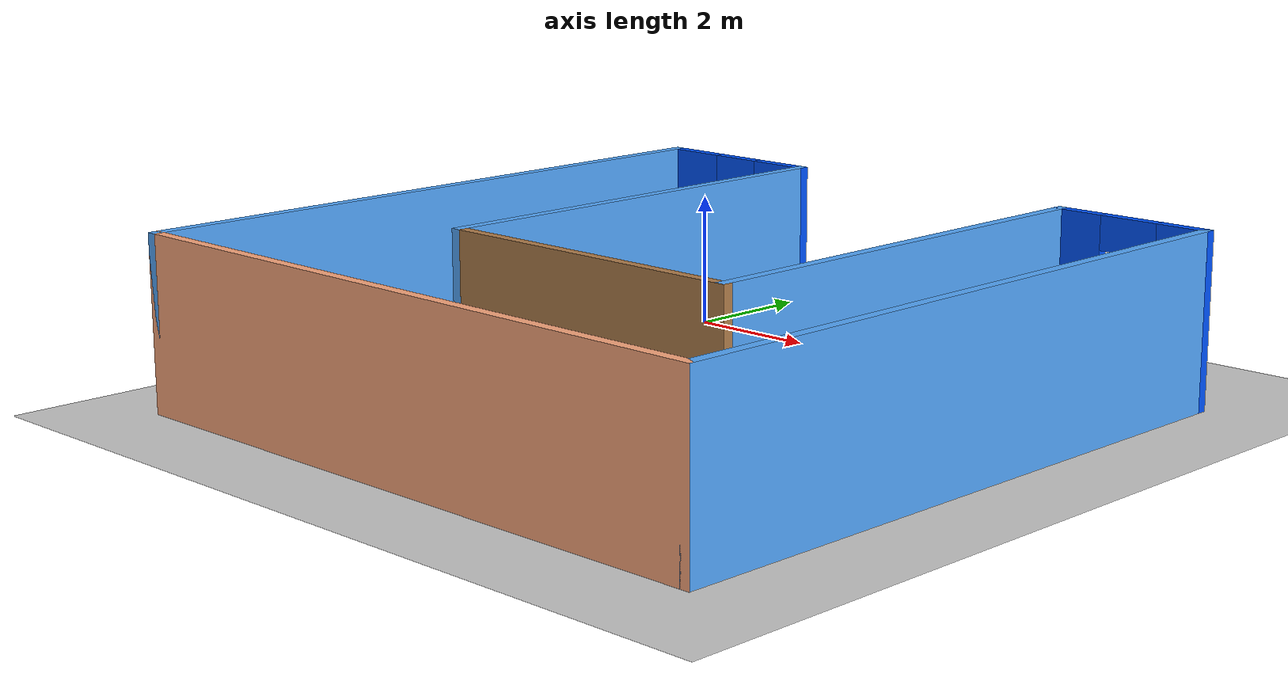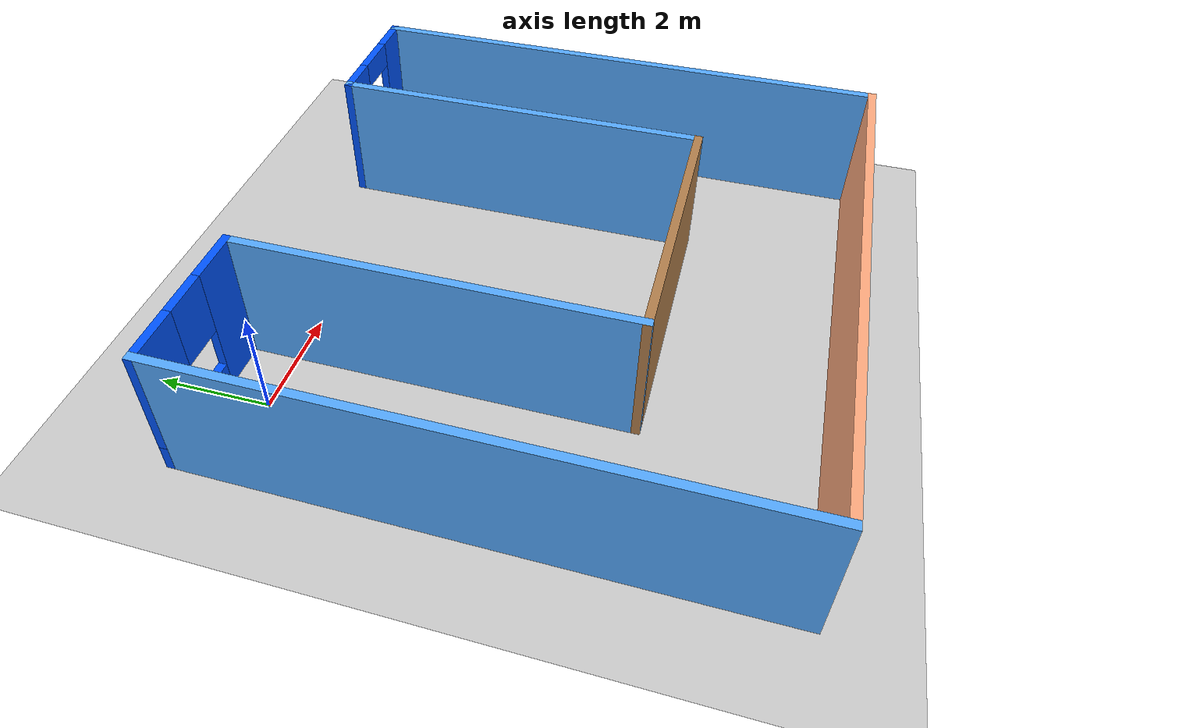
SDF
<sdf version="1.6">
 <world name="default">
  <light name="sun" type="directional">
   <pose>0 0 10 0 -0 0</pose>
   <diffuse>0.8 0.8 0.8 1</diffuse>
   <specular>0.1 0.1 0.1 1</specular>
   <attenuation>
    <range>1000</range>
    <constant>0.9</constant>
    <linear>0.01</linear>
    <quadratic>0.001</quadratic>
   </attenuation>
   <direction>-0.5 0.5 -1</direction>
  </light>
  <model name="ground_plane">
   <static>1</static>
   <link name="link">
    <collision name="collision">
     <geometry><plane><normal>0 0 1</normal><size>100 100</size></plane></geometry>
     <surface><friction><ode><mu>100</mu><mu2>50</mu2></ode></friction></surface>
    </collision>
    <visual name="visual">
     <cast_shadows>0</cast_shadows>
     <geometry><plane><normal>0 0 1</normal><size>100 100</size></plane></geometry>
     <material>
      <script><uri>file://media/materials/scripts/gazebo.material</uri><name>Gazebo/Grey</name></script>
     </material>
    </visual>
   </link>
  </model>
  <gravity>0 0 -9.8</gravity>
  <magnetic_field>6e-06 2.3e-05 -4.2e-05</magnetic_field>
  <atmosphere type="adiabatic"/>
  <physics name="default_physics" default="0" type="ode">
   <max_step_size>0.001</max_step_size>
   <real_time_factor>1</real_time_factor>
   <real_time_update_rate>1000</real_time_update_rate>
  </physics>
  <scene><ambient>0.4 0.4 0.4 1</ambient><background>0.7 0.7 0.7 1</background><shadows>1</shadows></scene>
  <spherical_coordinates>
   <surface_model>EARTH_WGS84</surface_model>
   <latitude_deg>0</latitude_deg>
   <longitude_deg>0</longitude_deg>
   <elevation>0</elevation>
   <heading_deg>0</heading_deg>
  </spherical_coordinates>
  <model name="building_U">
   <pose>3.44857 -4.03672 0 0 -0 0</pose>
   <link name="Wall_32">
    <collision name="Wall_32_Collision">
     <geometry><box><size>10 0.15 2.5</size></box></geometry>
     <pose>0 0 1.25 0 -0 0</pose>
    </collision>
    <visual name="Wall_32_Visual">
     <pose>0 0 1.25 0 -0 0</pose>
     <geometry><box><size>10 0.15 2.5</size></box></geometry>
     <material>
      <script><uri>file://media/materials/scripts/gazebo.material</uri><name>Gazebo/Grey</name></script>
      <ambient>0.333333 0.666667 1 1</ambient>
     </material>
    </visual>
    <pose>-4.925 0 0 0 0 -1.5708</pose>
   </link>
   <link name="Wall_33">
    <collision name="Wall_33_Collision">
     <geometry><box><size>10 0.15 2.5</size></box></geometry>
     <pose>0 0 1.25 0 -0 0</pose>
    </collision>
    <visual name="Wall_33_Visual">
     <pose>0 0 1.25 0 -0 0</pose>
     <geometry><box><size>10 0.15 2.5</size></box></geometry>
     <material>
      <script><uri>file://media/materials/scripts/gazebo.material</uri><name>Gazebo/Grey</name></script>
      <ambient>1 0.666667 0.498039 1</ambient>
     </material>
    </visual>
    <pose>0 -4.925 0 0 -0 0</pose>
   </link>
   <link name="Wall_34">
    <collision name="Wall_34_Collision">
     <geometry><box><size>10 0.15 2.5</size></box></geometry>
     <pose>0 0 1.25 0 -0 0</pose>
    </collision>
    <visual name="Wall_34_Visual">
     <pose>0 0 1.25 0 -0 0</pose>
     <geometry><box><size>10 0.15 2.5</size></box></geometry>
     <material>
      <script><uri>file://media/materials/scripts/gazebo.material</uri><name>Gazebo/Grey</name></script>
      <ambient>0.333333 0.666667 1 1</ambient>
     </material>
    </visual>
    <pose>4.925 0 0 0 -0 1.5708</pose>
   </link>
   <link name="Wall_35">
    <pose>3.75 4.925 0 0 -0 3.14159</pose>
    <visual name="Wall_35_Visual_0">
     <pose>-0.84962 0 1.25 0 -0 0</pose>
     <geometry><box><size>0.80076 0.15 2.5</size></box></geometry>
     <material>
      <script><uri>file://media/materials/scripts/gazebo.material</uri><name>Gazebo/Grey</name></script>
      <ambient>0 0.333333 1 1</ambient>
     </material>
    </visual>
    <collision name="Wall_35_Collision_0">
     <geometry><box><size>0.80076 0.15 2.5</size></box></geometry>
     <pose>-0.84962 0 1.25 0 -0 0</pose>
    </collision>
    <visual name="Wall_35_Visual_1">
     <pose>0.85038 0 1.25 0 -0 0</pose>
     <geometry><box><size>0.79924 0.15 2.5</size></box></geometry>
     <material>
      <script><uri>file://media/materials/scripts/gazebo.material</uri><name>Gazebo/Grey</name></script>
      <ambient>0 0.333333 1 1</ambient>
     </material>
    </visual>
    <collision name="Wall_35_Collision_1">
     <geometry><box><size>0.79924 0.15 2.5</size></box></geometry>
     <pose>0.85038 0 1.25 0 -0 0</pose>
    </collision>
    <visual name="Wall_35_Visual_2">
     <pose>0.00076 0 2.25 0 -0 0</pose>
     <geometry><box><size>0.9 0.15 0.5</size></box></geometry>
     <material>
      <script><uri>file://media/materials/scripts/gazebo.material</uri><name>Gazebo/Grey</name></script>
      <ambient>0 0.333333 1 1</ambient>
     </material>
    </visual>
    <collision name="Wall_35_Collision_2">
     <geometry><box><size>0.9 0.15 0.5</size></box></geometry>
     <pose>0.00076 0 2.25 0 -0 0</pose>
    </collision>
   </link>
   <link name="Wall_36">
    <collision name="Wall_36_Collision">
     <geometry><box><size>7 0.15 2.5</size></box></geometry>
     <pose>0 0 1.25 0 -0 0</pose>
    </collision>
    <visual name="Wall_36_Visual">
     <pose>0 0 1.25 0 -0 0</pose>
     <geometry><box><size>7 0.15 2.5</size></box></geometry>
     <material>
      <script><uri>file://media/materials/scripts/gazebo.material</uri><name>Gazebo/Grey</name></script>
      <ambient>0.333333 0.666667 1 1</ambient>
     </material>
    </visual>
    <pose>2.575 1.5 0 0 0 -1.5708</pose>
   </link>
   <link name="Wall_37">
    <collision name="Wall_37_Collision">
     <geometry><box><size>5 0.15 2.5</size></box></geometry>
     <pose>0 0 1.25 0 -0 0</pose>
    </collision>
    <visual name="Wall_37_Visual">
     <pose>0 0 1.25 0 -0 0</pose>
     <geometry><box><size>5 0.15 2.5</size></box></geometry>
     <material>
      <script><uri>file://media/materials/scripts/gazebo.material</uri><name>Gazebo/Wood</name></script>
      <ambient>1 1 1 1</ambient>
     </material>
    </visual>
    <pose>0.15 -1.925 0 0 -0 3.14159</pose>
   </link>
   <link name="Wall_38">
    <collision name="Wall_38_Collision">
     <geometry><box><size>7 0.15 2.5</size></box></geometry>
     <pose>0 0 1.25 0 -0 0</pose>
    </collision>
    <visual name="Wall_38_Visual">
     <pose>0 0 1.25 0 -0 0</pose>
     <geometry><box><size>7 0.15 2.5</size></box></geometry>
     <material>
      <script><uri>file://media/materials/scripts/gazebo.material</uri><name>Gazebo/Grey</name></script>
      <ambient>0.333333 0.666667 1 1</ambient>
     </material>
    </visual>
    <pose>-2.275 1.5 0 0 -0 1.5708</pose>
   </link>
   <link name="Wall_39">
    <pose>-3.6 4.925 0 0 -0 3.14159</pose>
    <visual name="Wall_39_Visual_0">
     <pose>-0.906687 0 1.25 0 -0 0</pose>
     <geometry><box><size>0.986626 0.15 2.5</size></box></geometry>
     <material>
      <script><uri>file://media/materials/scripts/gazebo.material</uri><name>Gazebo/Grey</name></script>
      <ambient>0 0.333333 1 1</ambient>
     </material>
    </visual>
    <collision name="Wall_39_Collision_0">
     <geometry><box><size>0.986626 0.15 2.5</size></box></geometry>
     <pose>-0.906687 0 1.25 0 -0 0</pose>
    </collision>
    <visual name="Wall_39_Visual_1">
     <pose>0.493313 0 0.25 0 -0 0</pose>
     <geometry><box><size>1.81337 0.15 0.5</size></box></geometry>
     <material>
      <script><uri>file://media/materials/scripts/gazebo.material</uri><name>Gazebo/Grey</name></script>
      <ambient>0 0.333333 1 1</ambient>
     </material>
    </visual>
    <collision name="Wall_39_Collision_1">
     <geometry><box><size>1.81337 0.15 0.5</size></box></geometry>
     <pose>0.493313 0 0.25 0 -0 0</pose>
    </collision>
    <visual name="Wall_39_Visual_2">
     <pose>0.893313 0 1.5 0 -0 0</pose>
     <geometry><box><size>1.01337 0.15 2</size></box></geometry>
     <material>
      <script><uri>file://media/materials/scripts/gazebo.material</uri><name>Gazebo/Grey</name></script>
      <ambient>0 0.333333 1 1</ambient>
     </material>
    </visual>
    <collision name="Wall_39_Collision_2">
     <geometry><box><size>1.01337 0.15 2</size></box></geometry>
     <pose>0.893313 0 1.5 0 -0 0</pose>
    </collision>
    <visual name="Wall_39_Visual_3">
     <pose>-0.013374 0 1.9 0 -0 0</pose>
     <geometry><box><size>0.8 0.15 1.2</size></box></geometry>
     <material>
      <script><uri>file://media/materials/scripts/gazebo.material</uri><name>Gazebo/Grey</name></script>
      <ambient>0 0.333333 1 1</ambient>
     </material>
    </visual>
    <collision name="Wall_39_Collision_3">
     <geometry><box><size>0.8 0.15 1.2</size></box></geometry>
     <pose>-0.013374 0 1.9 0 -0 0</pose>
    </collision>
   </link>
   <static>1</static>
  </model>
 </world>
</sdf>
